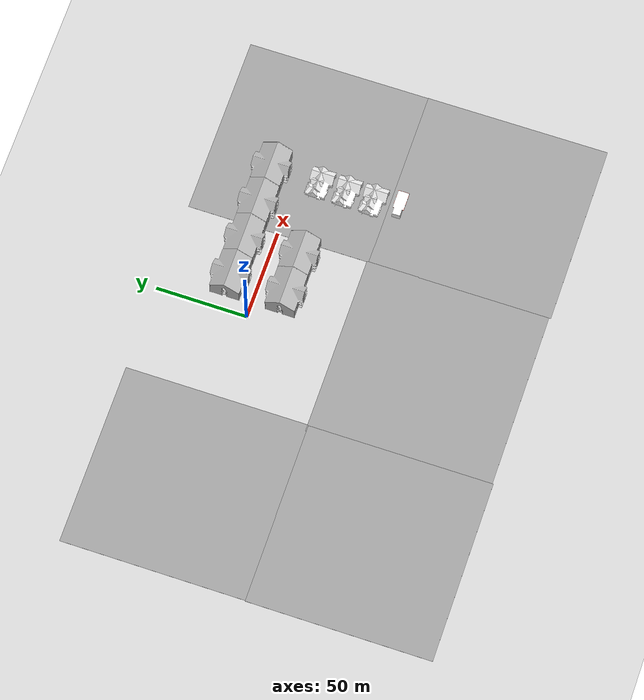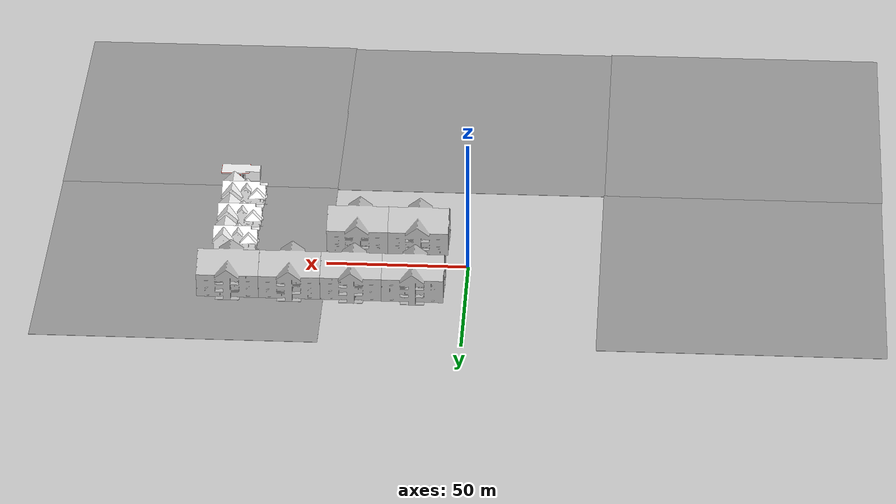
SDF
<sdf version="1.6">
 <world name="default">
  <model name="ground_plane">
   <static>1</static>
   <link name="link">
    <collision name="collision">
     <geometry><plane><normal>0 0 1</normal><size>100 100</size></plane></geometry>
     <surface><friction><ode><mu>100</mu><mu2>50</mu2></ode></friction></surface>
    </collision>
    <visual name="visual">
     <cast_shadows>0</cast_shadows>
     <geometry><plane><normal>0 0 1</normal><size>100 100</size></plane></geometry>
     <material>
      <script><uri>file://media/materials/scripts/gazebo.material</uri><name>Gazebo/Grey</name></script>
     </material>
    </visual>
   </link>
  </model>
  <light name="sun" type="directional">
   <pose>0 0 10 0 -0 0</pose>
   <diffuse>0.8 0.8 0.8 1</diffuse>
   <specular>0.2 0.2 0.2 1</specular>
   <attenuation>
    <range>1000</range>
    <constant>0.9</constant>
    <linear>0.01</linear>
    <quadratic>0.001</quadratic>
   </attenuation>
   <direction>-0.5 0.1 -0.9</direction>
  </light>
  <model name="gas_station">
   <static>1</static>
   <link name="link">
    <collision name="collision">
     <geometry><mesh><uri>model://gas_station/meshes/gas_station.dae</uri></mesh></geometry>
    </collision>
    <visual name="visual">
     <geometry><mesh><uri>model://gas_station/meshes/gas_station.dae</uri></mesh></geometry>
     <material>
      <script>
       <uri>model://gas_station/materials/scripts</uri>
       <uri>model://gas_station/materials/textures</uri>
       <name>GasStation/Diffuse</name>
      </script>
      <shader type="normal_map_tangent_space"><normal_map>GasStation_Normal.png</normal_map></shader>
     </material>
    </visual>
   </link>
   <pose>84.674 -55.6004 0 0 -0 0</pose>
  </model>
  <gravity>0 0 -9.8</gravity>
  <magnetic_field>6e-06 2.3e-05 -4.2e-05</magnetic_field>
  <atmosphere type="adiabatic"/>
  <physics name="default_physics" default="0" type="ode">
   <max_step_size>0.001</max_step_size>
   <real_time_factor>1</real_time_factor>
   <real_time_update_rate>1000</real_time_update_rate>
  </physics>
  <scene><ambient>0.4 0.4 0.4 1</ambient><background>0.7 0.7 0.7 1</background><shadows>1</shadows></scene>
  <spherical_coordinates>
   <surface_model>EARTH_WGS84</surface_model>
   <latitude_deg>0</latitude_deg>
   <longitude_deg>0</longitude_deg>
   <elevation>0</elevation>
   <heading_deg>0</heading_deg>
  </spherical_coordinates>
  <model name="apartment">
   <static>1</static>
   <link name="link">
    <collision name="collision">
     <geometry><mesh><uri>model://apartment/meshes/apartment.dae</uri></mesh></geometry>
    </collision>
    <visual name="visual">
     <geometry><mesh><uri>model://apartment/meshes/apartment.dae</uri></mesh></geometry>
    </visual>
   </link>
   <pose>18.3357 15.0755 0 0 -0 1.57</pose>
  </model>
  <model name="apartment_clone">
   <static>1</static>
   <link name="link">
    <collision name="collision">
     <geometry><mesh><uri>model://apartment/meshes/apartment.dae</uri></mesh></geometry>
    </collision>
    <visual name="visual">
     <geometry><mesh><uri>model://apartment/meshes/apartment.dae</uri></mesh></geometry>
    </visual>
   </link>
   <pose>39.7547 14.9811 0 0 -0 1.57</pose>
  </model>
  <model name="apartment_clone_clone">
   <static>1</static>
   <link name="link">
    <collision name="collision">
     <geometry><mesh><uri>model://apartment/meshes/apartment.dae</uri></mesh></geometry>
    </collision>
    <visual name="visual">
     <geometry><mesh><uri>model://apartment/meshes/apartment.dae</uri></mesh></geometry>
    </visual>
   </link>
   <pose>61.4401 15.0276 0 0 -0 1.57</pose>
  </model>
  <model name="apartment_clone_0">
   <static>1</static>
   <link name="link">
    <collision name="collision">
     <geometry><mesh><uri>model://apartment/meshes/apartment.dae</uri></mesh></geometry>
    </collision>
    <visual name="visual">
     <geometry><mesh><uri>model://apartment/meshes/apartment.dae</uri></mesh></geometry>
    </visual>
   </link>
   <pose>18.2568 -15.3977 0 0 -0 1.57</pose>
  </model>
  <model name="apartment_clone_0_clone">
   <static>1</static>
   <link name="link">
    <collision name="collision">
     <geometry><mesh><uri>model://apartment/meshes/apartment.dae</uri></mesh></geometry>
    </collision>
    <visual name="visual">
     <geometry><mesh><uri>model://apartment/meshes/apartment.dae</uri></mesh></geometry>
    </visual>
   </link>
   <pose>39.7007 -15.3944 0 0 -0 1.57</pose>
  </model>
  <model name="House 1">
   <static>1</static>
   <link name="link">
    <collision name="collision">
     <geometry><mesh><uri>model://house_1/meshes/house_1.dae</uri><scale>1.5 1.5 1.5</scale></mesh></geometry>
    </collision>
    <visual name="visual">
     <geometry><mesh><uri>model://house_1/meshes/house_1.dae</uri><scale>1.5 1.5 1.5</scale></mesh></geometry>
     <material>
      <script>
       <uri>model://house_1/materials/scripts</uri>
       <uri>model://house_1/materials/textures</uri>
       <name>House_1/Diffuse</name>
      </script>
      <shader type="normal_map_tangent_space"><normal_map>House_1_Normal.png</normal_map></shader>
     </material>
    </visual>
   </link>
   <pose>83.4145 -11.7453 0 0 -0 0</pose>
  </model>
  <model name="apartment_clone_clone_clone">
   <static>1</static>
   <link name="link">
    <collision name="collision">
     <geometry><mesh><uri>model://apartment/meshes/apartment.dae</uri></mesh></geometry>
    </collision>
    <visual name="visual">
     <geometry><mesh><uri>model://apartment/meshes/apartment.dae</uri></mesh></geometry>
    </visual>
   </link>
   <pose>83.036 15.0457 0 0 -0 1.57</pose>
  </model>
  <model name="House 1_clone">
   <static>1</static>
   <link name="link">
    <collision name="collision">
     <geometry><mesh><uri>model://house_1/meshes/house_1.dae</uri><scale>1.5 1.5 1.5</scale></mesh></geometry>
    </collision>
    <visual name="visual">
     <geometry><mesh><uri>model://house_1/meshes/house_1.dae</uri><scale>1.5 1.5 1.5</scale></mesh></geometry>
     <material>
      <script>
       <uri>model://house_1/materials/scripts</uri>
       <uri>model://house_1/materials/textures</uri>
       <name>House_1/Diffuse</name>
      </script>
      <shader type="normal_map_tangent_space"><normal_map>House_1_Normal.png</normal_map></shader>
     </material>
    </visual>
   </link>
   <pose>83.1495 -26.6597 0 0 -0 0</pose>
  </model>
  <model name="House 1_clone_0">
   <static>1</static>
   <link name="link">
    <collision name="collision">
     <geometry><mesh><uri>model://house_1/meshes/house_1.dae</uri><scale>1.5 1.5 1.5</scale></mesh></geometry>
    </collision>
    <visual name="visual">
     <geometry><mesh><uri>model://house_1/meshes/house_1.dae</uri><scale>1.5 1.5 1.5</scale></mesh></geometry>
     <material>
      <script>
       <uri>model://house_1/materials/scripts</uri>
       <uri>model://house_1/materials/textures</uri>
       <name>House_1/Diffuse</name>
      </script>
      <shader type="normal_map_tangent_space"><normal_map>House_1_Normal.png</normal_map></shader>
     </material>
    </visual>
   </link>
   <pose>82.9964 -41.5168 0 0 -0 0</pose>
  </model>
  <model name="ground_plane_0">
   <static>1</static>
   <link name="link">
    <collision name="collision">
     <geometry><plane><normal>0 0 1</normal><size>100 100</size></plane></geometry>
     <surface><friction><ode><mu>100</mu><mu2>50</mu2></ode></friction></surface>
    </collision>
    <visual name="visual">
     <cast_shadows>0</cast_shadows>
     <geometry><plane><normal>0 0 1</normal><size>100 100</size></plane></geometry>
     <material>
      <script><uri>file://media/materials/scripts/gazebo.material</uri><name>Gazebo/Grey</name></script>
     </material>
    </visual>
   </link>
   <pose>-0.037273 -99.0745 0 0 -0 0</pose>
  </model>
  <model name="ground_plane_1">
   <static>1</static>
   <link name="link">
    <collision name="collision">
     <geometry><plane><normal>0 0 1</normal><size>100 100</size></plane></geometry>
     <surface><friction><ode><mu>100</mu><mu2>50</mu2></ode></friction></surface>
    </collision>
    <visual name="visual">
     <cast_shadows>0</cast_shadows>
     <geometry><plane><normal>0 0 1</normal><size>100 100</size></plane></geometry>
     <material>
      <script><uri>file://media/materials/scripts/gazebo.material</uri><name>Gazebo/Grey</name></script>
     </material>
    </visual>
   </link>
   <pose>99.5974 -0.193372 0 0 -0 0</pose>
  </model>
  <model name="ground_plane_2">
   <static>1</static>
   <link name="link">
    <collision name="collision">
     <geometry><plane><normal>0 0 1</normal><size>100 100</size></plane></geometry>
     <surface><friction><ode><mu>100</mu><mu2>50</mu2></ode></friction></surface>
    </collision>
    <visual name="visual">
     <cast_shadows>0</cast_shadows>
     <geometry><plane><normal>0 0 1</normal><size>100 100</size></plane></geometry>
     <material>
      <script><uri>file://media/materials/scripts/gazebo.material</uri><name>Gazebo/Grey</name></script>
     </material>
    </visual>
   </link>
   <pose>99.7181 -100.033 0 0 -0 0</pose>
  </model>
  <model name="ground_plane_3">
   <static>1</static>
   <link name="link">
    <collision name="collision">
     <geometry><plane><normal>0 0 1</normal><size>100 100</size></plane></geometry>
     <surface><friction><ode><mu>100</mu><mu2>50</mu2></ode></friction></surface>
    </collision>
    <visual name="visual">
     <cast_shadows>0</cast_shadows>
     <geometry><plane><normal>0 0 1</normal><size>100 100</size></plane></geometry>
     <material>
      <script><uri>file://media/materials/scripts/gazebo.material</uri><name>Gazebo/Grey</name></script>
     </material>
    </visual>
   </link>
   <pose>-96.4927 0.207294 0 0 -0 0</pose>
  </model>
  <model name="ground_plane_4">
   <static>1</static>
   <link name="link">
    <collision name="collision">
     <geometry><plane><normal>0 0 1</normal><size>100 100</size></plane></geometry>
     <surface><friction><ode><mu>100</mu><mu2>50</mu2></ode></friction></surface>
    </collision>
    <visual name="visual">
     <cast_shadows>0</cast_shadows>
     <geometry><plane><normal>0 0 1</normal><size>100 100</size></plane></geometry>
     <material>
      <script><uri>file://media/materials/scripts/gazebo.material</uri><name>Gazebo/Grey</name></script>
     </material>
    </visual>
   </link>
   <pose>-96.8227 -99.6308 0 0 -0 0</pose>
  </model>
 </world>
</sdf>
